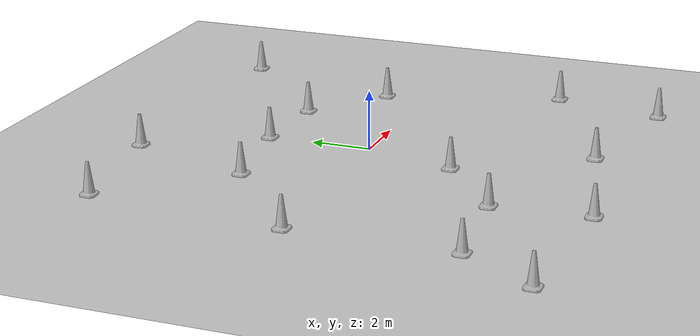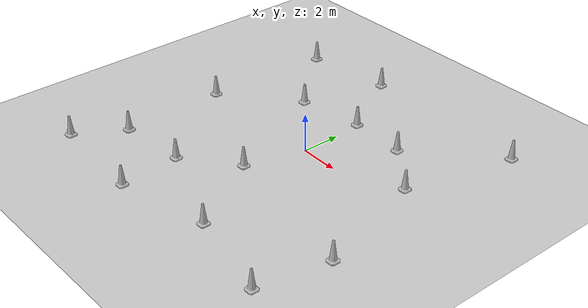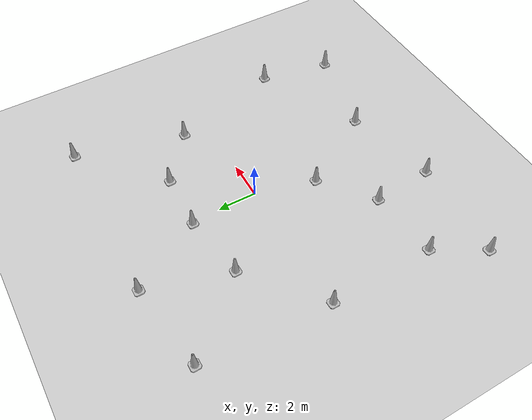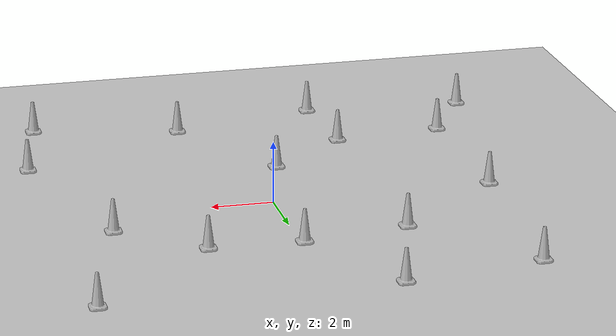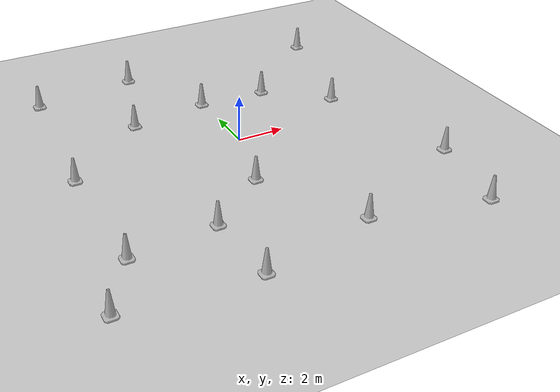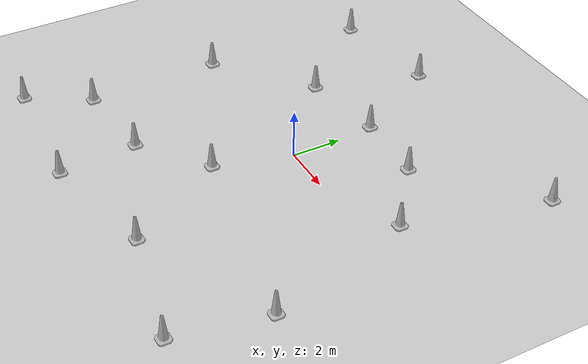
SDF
<sdf version='1.9'>
  <world name='cones'>
    <physics name='1ms' type='ignored'>
      <max_step_size>0.001</max_step_size>
      <real_time_factor>1</real_time_factor>
      <real_time_update_rate>1000</real_time_update_rate>
    </physics>
    <plugin name='ignition::gazebo::systems::Physics' filename='ignition-gazebo-physics-system'/>
    <plugin name='ignition::gazebo::systems::UserCommands' filename='ignition-gazebo-user-commands-system'/>
    <plugin name='ignition::gazebo::systems::SceneBroadcaster' filename='ignition-gazebo-scene-broadcaster-system'/>
    <plugin name='ignition::gazebo::systems::Imu' filename='ignition-gazebo-imu-system'/>
    <plugin name='ignition::gazebo::systems::Sensors' filename='ignition-gazebo-sensors-system'>
      <render_engine>ogre2</render_engine>
    </plugin>
    <plugin name='ignition::gazebo::systems::Contact' filename='ignition-gazebo-contact-system'/>
    <gui fullscreen='false'>
      <plugin name='3D View' filename='MinimalScene'>
        <ignition-gui>
          <title>3D View</title>
          <property type='bool' key='showTitleBar'>false</property>
          <property type='string' key='state'>docked</property>
        </ignition-gui>
        <engine>ogre2</engine>
        <scene>scene</scene>
        <ambient_light>0.4 0.4 0.4</ambient_light>
        <background_color>0.8 0.8 0.8</background_color>
        <camera_pose>-6 0 6 0 0.5 0</camera_pose>
        <camera_clip>
          <near>0.25</near>
          <far>25000</far>
        </camera_clip>
      </plugin>
      <plugin name='Entity context menu' filename='EntityContextMenuPlugin'>
        <ignition-gui>
          <property key='state' type='string'>floating</property>
          <property key='width' type='double'>5</property>
          <property key='height' type='double'>5</property>
          <property key='showTitleBar' type='bool'>false</property>
        </ignition-gui>
      </plugin>
      <plugin name='Scene Manager' filename='GzSceneManager'>
        <ignition-gui>
          <property key='resizable' type='bool'>false</property>
          <property key='width' type='double'>5</property>
          <property key='height' type='double'>5</property>
          <property key='state' type='string'>floating</property>
          <property key='showTitleBar' type='bool'>false</property>
        </ignition-gui>
      </plugin>
      <plugin name='Interactive view control' filename='InteractiveViewControl'>
        <ignition-gui>
          <property key='resizable' type='bool'>false</property>
          <property key='width' type='double'>5</property>
          <property key='height' type='double'>5</property>
          <property key='state' type='string'>floating</property>
          <property key='showTitleBar' type='bool'>false</property>
        </ignition-gui>
      </plugin>
      <plugin name='Camera Tracking' filename='CameraTracking'>
        <ignition-gui>
          <property key='resizable' type='bool'>false</property>
          <property key='width' type='double'>5</property>
          <property key='height' type='double'>5</property>
          <property key='state' type='string'>floating</property>
          <property key='showTitleBar' type='bool'>false</property>
        </ignition-gui>
      </plugin>
      <plugin name='Marker manager' filename='MarkerManager'>
        <ignition-gui>
          <property key='resizable' type='bool'>false</property>
          <property key='width' type='double'>5</property>
          <property key='height' type='double'>5</property>
          <property key='state' type='string'>floating</property>
          <property key='showTitleBar' type='bool'>false</property>
        </ignition-gui>
      </plugin>
      <plugin name='Select Entities' filename='SelectEntities'>
        <ignition-gui>
          <anchors target='Select entities'>
            <line own='right' target='right'/>
            <line own='top' target='top'/>
          </anchors>
          <property key='resizable' type='bool'>false</property>
          <property key='width' type='double'>5</property>
          <property key='height' type='double'>5</property>
          <property key='state' type='string'>floating</property>
          <property key='showTitleBar' type='bool'>false</property>
        </ignition-gui>
      </plugin>
      <plugin name='Visualization Capabilities' filename='VisualizationCapabilities'>
        <ignition-gui>
          <property key='resizable' type='bool'>false</property>
          <property key='width' type='double'>5</property>
          <property key='height' type='double'>5</property>
          <property key='state' type='string'>floating</property>
          <property key='showTitleBar' type='bool'>false</property>
        </ignition-gui>
      </plugin>
      <plugin name='Spawn Entities' filename='Spawn'>
        <ignition-gui>
          <anchors target='Select entities'>
            <line own='right' target='right'/>
            <line own='top' target='top'/>
          </anchors>
          <property key='resizable' type='bool'>false</property>
          <property key='width' type='double'>5</property>
          <property key='height' type='double'>5</property>
          <property key='state' type='string'>floating</property>
          <property key='showTitleBar' type='bool'>false</property>
        </ignition-gui>
      </plugin>
      <plugin name='World control' filename='WorldControl'>
        <ignition-gui>
          <title>World control</title>
          <property type='bool' key='showTitleBar'>false</property>
          <property type='bool' key='resizable'>false</property>
          <property type='double' key='height'>72</property>
          <property type='double' key='width'>121</property>
          <property type='double' key='z'>1</property>
          <property type='string' key='state'>floating</property>
          <anchors target='3D View'>
            <line own='left' target='left'/>
            <line own='bottom' target='bottom'/>
          </anchors>
        </ignition-gui>
        <play_pause>true</play_pause>
        <step>true</step>
        <start_paused>true</start_paused>
        <use_event>true</use_event>
      </plugin>
      <plugin name='World stats' filename='WorldStats'>
        <ignition-gui>
          <title>World stats</title>
          <property type='bool' key='showTitleBar'>false</property>
          <property type='bool' key='resizable'>false</property>
          <property type='double' key='height'>110</property>
          <property type='double' key='width'>290</property>
          <property type='double' key='z'>1</property>
          <property type='string' key='state'>floating</property>
          <anchors target='3D View'>
            <line own='right' target='right'/>
            <line own='bottom' target='bottom'/>
          </anchors>
        </ignition-gui>
        <sim_time>true</sim_time>
        <real_time>true</real_time>
        <real_time_factor>true</real_time_factor>
        <iterations>true</iterations>
      </plugin>
      <plugin name='Visualize Lidar' filename='VisualizeLidar'/>
      <plugin name='Shapes' filename='Shapes'>
        <ignition-gui>
          <property key='resizable' type='bool'>false</property>
          <property key='x' type='double'>0</property>
          <property key='y' type='double'>0</property>
          <property key='width' type='double'>250</property>
          <property key='height' type='double'>50</property>
          <property key='state' type='string'>floating</property>
          <property key='showTitleBar' type='bool'>false</property>
          <property key='cardBackground' type='string'>#666666</property>
        </ignition-gui>
      </plugin>
      <plugin name='Lights' filename='Lights'>
        <ignition-gui>
          <property key='resizable' type='bool'>false</property>
          <property key='x' type='double'>250</property>
          <property key='y' type='double'>0</property>
          <property key='width' type='double'>150</property>
          <property key='height' type='double'>50</property>
          <property key='state' type='string'>floating</property>
          <property key='showTitleBar' type='bool'>false</property>
          <property key='cardBackground' type='string'>#666666</property>
        </ignition-gui>
      </plugin>
      <plugin name='Transform control' filename='TransformControl'>
        <ignition-gui>
          <property key='resizable' type='bool'>false</property>
          <property key='x' type='double'>0</property>
          <property key='y' type='double'>50</property>
          <property key='width' type='double'>250</property>
          <property key='height' type='double'>50</property>
          <property key='state' type='string'>floating</property>
          <property key='showTitleBar' type='bool'>false</property>
          <property key='cardBackground' type='string'>#777777</property>
        </ignition-gui>
      </plugin>
      <plugin name='Screenshot' filename='Screenshot'>
        <ignition-gui>
          <property key='resizable' type='bool'>false</property>
          <property key='x' type='double'>250</property>
          <property key='y' type='double'>50</property>
          <property key='width' type='double'>50</property>
          <property key='height' type='double'>50</property>
          <property key='state' type='string'>floating</property>
          <property key='showTitleBar' type='bool'>false</property>
          <property key='cardBackground' type='string'>#777777</property>
        </ignition-gui>
      </plugin>
      <plugin name='VideoRecorder' filename='VideoRecorder'>
        <ignition-gui>
          <property key='resizable' type='bool'>false</property>
          <property key='x' type='double'>300</property>
          <property key='y' type='double'>50</property>
          <property key='width' type='double'>50</property>
          <property key='height' type='double'>50</property>
          <property key='state' type='string'>floating</property>
          <property key='showTitleBar' type='bool'>false</property>
          <property key='cardBackground' type='string'>#777777</property>
        </ignition-gui>
        <record_video>
          <use_sim_time>true</use_sim_time>
          <lockstep>false</lockstep>
          <bitrate>4000000</bitrate>
        </record_video>
      </plugin>
      <plugin name='Component inspector' filename='ComponentInspector'>
        <ignition-gui>
          <property type='string' key='state'>docked_collapsed</property>
        </ignition-gui>
      </plugin>
      <plugin name='Entity tree' filename='EntityTree'>
        <ignition-gui>
          <property type='string' key='state'>docked_collapsed</property>
        </ignition-gui>
      </plugin>
      <plugin name='View angle' filename='ViewAngle'>
        <ignition-gui>
          <property type='string' key='state'>docked_collapsed</property>
        </ignition-gui>
      </plugin>
      <plugin name='Key Publisher' filename='KeyPublisher'/>
      <plugin name='Image Display' filename='ImageDisplay'>
        <ignition-gui>
          <property key='state' type='string'>floating</property>
        </ignition-gui>
      </plugin>
      <plugin name='Image Display' filename='ImageDisplay'>
        <ignition-gui>
          <property key='state' type='string'>floating</property>
        </ignition-gui>
      </plugin>
    </gui>
    <gravity>0 0 -9.8</gravity>
    <magnetic_field>6e-06 2.3e-05 -4.2e-05</magnetic_field>
    <atmosphere type='adiabatic'/>
    <scene>
      <ambient>0.4 0.4 0.4 1</ambient>
      <background>0.7 0.7 0.7 1</background>
      <shadows>true</shadows>
    </scene>
    <model name='ground_plane'>
      <static>true</static>
      <link name='link'>
        <collision name='collision'>
          <geometry>
            <plane>
              <normal>0 0 1</normal>
              <size>1 1</size>
            </plane>
          </geometry>
          <surface>
            <friction>
              <ode/>
            </friction>
            <bounce/>
            <contact/>
          </surface>
        </collision>
        <visual name='visual'>
          <geometry>
            <plane>
              <normal>0 0 1</normal>
              <size>100 100</size>
            </plane>
          </geometry>
          <material>
            <ambient>0.8 0.8 0.8 1</ambient>
            <diffuse>0.8 0.8 0.8 1</diffuse>
            <specular>0.8 0.8 0.8 1</specular>
          </material>
        </visual>
        <pose>0 0 0 0 -0 0</pose>
        <inertial>
          <pose>0 0 0 0 -0 0</pose>
          <mass>1</mass>
          <inertia>
            <ixx>1</ixx>
            <ixy>0</ixy>
            <ixz>0</ixz>
            <iyy>1</iyy>
            <iyz>0</iyz>
            <izz>1</izz>
          </inertia>
        </inertial>
        <enable_wind>false</enable_wind>
      </link>
      <pose>0 0 0 0 -0 0</pose>
      <self_collide>false</self_collide>
    </model>

    <include>
      <uri>model://construction_cone</uri>
      <name>Construction Cone</name>
      <pose>-0.120946 3.49807 0 0 -0 0</pose>
    </include>
    <include>
      <uri>model://construction_cone</uri>
      <name>Construction Cone_0</name>
      <pose>-0.842062 -3.05334 0 0 -0 0</pose>
    </include>
    <include>
      <uri>model://construction_cone</uri>
      <name>Construction Cone_1</name>
      <pose>-3.5074 2.97787 0 0 -0 0</pose>
    </include>
    <include>
      <uri>model://construction_cone</uri>
      <name>Construction Cone_2</name>
      <pose>2.81956 3.34812 0 0 -0 0</pose>
    </include>
    <include>
      <uri>model://construction_cone</uri>
      <name>Construction Cone_3</name>
      <pose>1.59959 -7.15869 0 0 -0 0</pose>
    </include>
    <include>
      <uri>model://construction_cone</uri>
      <name>Construction Cone_4</name>
      <pose>-3.43405 -5.08354 0 0 -0 0</pose>
    </include>
    <include>
      <uri>model://construction_cone</uri>
      <name>Construction Cone_5</name>
      <pose>-7.09113 0.015561 0 0 -0 0</pose>
    </include>
    <include>
      <uri>model://construction_cone</uri>
      <name>Construction Cone_6</name>
      <pose>7.06766 -4.58948 0 0 -0 0</pose>
    </include>
    <include>
      <uri>model://construction_cone</uri>
      <name>Construction Cone_7</name>
      <pose>5.33902 1.33074 0 0 -0 0</pose>
    </include>
    <include>
      <uri>model://construction_cone</uri>
      <name>Construction Cone_8</name>
      <pose>-6.64631 6.57939 0 0 -0 0</pose>
    </include>
    <include>
      <uri>model://construction_cone</uri>
      <name>Construction Cone_9</name>
      <pose>-7.00113 -5.3952 0 0 -0 0</pose>
    </include>
    <include>
      <uri>model://construction_cone</uri>
      <name>Construction Cone_10</name>
      <pose>6.8161 6.94823 0 0 -0 0</pose>
    </include>
    <include>
      <uri>model://construction_cone</uri>
      <name>Construction Cone_11</name>
      <pose>6.33156 -8.25695 0 0 -0 0</pose>
    </include>
    <include>
      <uri>model://construction_cone</uri>
      <name>Construction Cone_12</name>
      <pose>-2.21481 7.20551 0 0 -0 0</pose>
    </include>
    <include>
      <uri>model://construction_cone</uri>
      <name>Construction Cone_13</name>
      <pose>-3.18097 -8.23632 0 0 -0 0</pose>
    </include>
    <include>
      <uri>model://construction_cone</uri>
      <name>Construction Cone_14</name>
      <pose>-8.4468 -7.82491 0 0 -0 0</pose>
    </include>
    <light name='sun' type='directional'>
      <pose>0 0 10 0 -0 0</pose>
      <cast_shadows>true</cast_shadows>
      <intensity>1</intensity>
      <direction>-0.5 0.1 -0.9</direction>
      <diffuse>0.8 0.8 0.8 1</diffuse>
      <specular>0.2 0.2 0.2 1</specular>
      <attenuation>
        <range>1000</range>
        <linear>0.01</linear>
        <constant>0.90000000000000002</constant>
        <quadratic>0.001</quadratic>
      </attenuation>
      <spot>
        <inner_angle>0</inner_angle>
        <outer_angle>0</outer_angle>
        <falloff>0</falloff>
      </spot>
    </light>
  </world>
</sdf>

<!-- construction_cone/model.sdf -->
<sdf version="1.5">
  <model name="Construction Cone">
    <link name="link">
      <collision name="collision">
        <geometry>
          <mesh>
            <scale>10 10 10</scale>
            <uri>file://isr-testbed/construction_cone/meshes/construction_cone.dae</uri>
          </mesh>
        </geometry>
      </collision>
      <visual name="visual">
        <geometry>
          <mesh>
            <scale>10 10 10</scale>
            <uri>file://isr-testbed/construction_cone/meshes/construction_cone.dae</uri>
          </mesh>
        </geometry>
      </visual>
    </link>
  </model>
</sdf>
